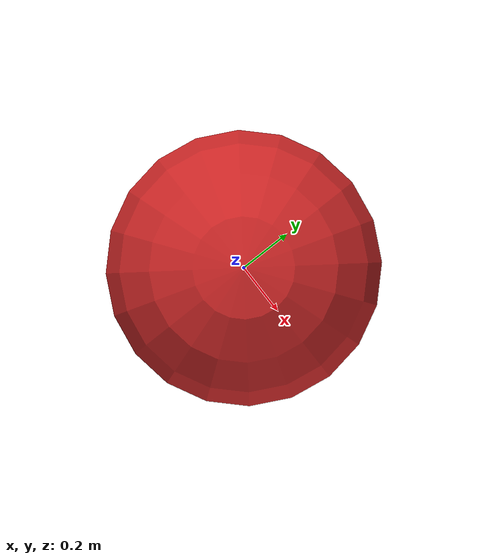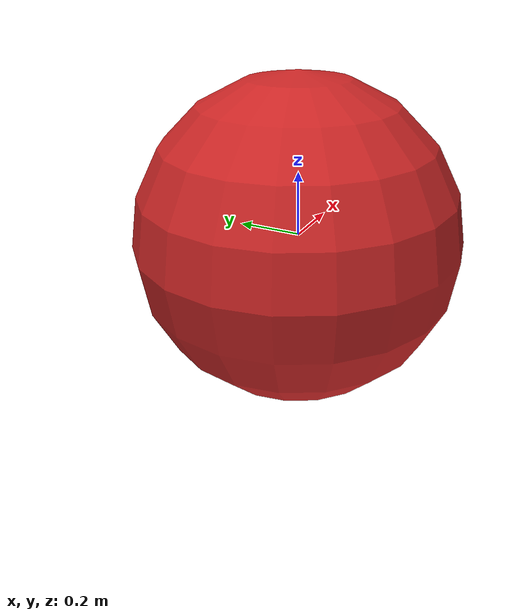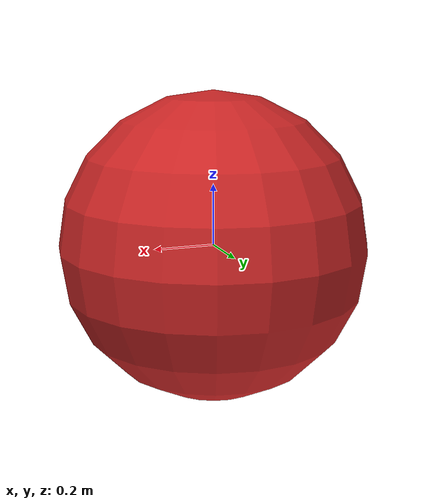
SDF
<?xml version='1.0'?>
<sdf version='1.7'>
  <model name='RedBall'>
    <link name='link_0'>
      <inertial>
        <mass>3979.35</mass>
        <inertia>
          <ixx>397.935</ixx>
          <ixy>0</ixy>
          <ixz>0</ixz>
          <iyy>397.935</iyy>
          <iyz>0</iyz>
          <izz>397.935</izz>
        </inertia>
        <pose>0 0 0 0 -0 0</pose>
      </inertial>
      <pose>0 0 0 0 -0 0</pose>
      <gravity>1</gravity>
      <self_collide>0</self_collide>
      <kinematic>0</kinematic>
      <enable_wind>0</enable_wind>
      <visual name='visual'>
        <pose>0 0 0 0 -0 0</pose>
        <geometry>
          <sphere>
            <radius>0.5</radius>
          </sphere>
        </geometry>
        <material>
          <lighting>1</lighting>
          <script>
            <uri>file://media/materials/scripts/gazebo.material</uri>
            <name>Gazebo/Red</name>
          </script>
          <shader type='pixel'>
            <normal_map>__default__</normal_map>
          </shader>
          <ambient>1 0 0 1</ambient>
          <diffuse>1 0 0 1</diffuse>
          <specular>0.1 0.1 0.1 1</specular>
          <emissive>0 0 0 1</emissive>
        </material>
        <transparency>0</transparency>
        <cast_shadows>1</cast_shadows>
      </visual>
      <visual name='ModelPreview_0::link_0::visual_1'>
        <pose>0 0 0 0 -0 0</pose>
        <geometry>
          <sphere>
            <radius>0.5</radius>
          </sphere>
        </geometry>
        <material>
          <lighting>1</lighting>
          <script>
            <uri>file://media/materials/scripts/gazebo.material</uri>
            <name>Gazebo/Red</name>
          </script>
          <shader type='pixel'>
            <normal_map>__default__</normal_map>
          </shader>
          <ambient>1 0 0 1</ambient>
          <diffuse>1 0 0 1</diffuse>
          <specular>0.1 0.1 0.1 1</specular>
          <emissive>0 0 0 1</emissive>
        </material>
        <transparency>0</transparency>
        <cast_shadows>1</cast_shadows>
      </visual>
      <collision name='collision'>
        <laser_retro>0</laser_retro>
        <max_contacts>0</max_contacts>
        <pose>0 0 0 0 -0 0</pose>
        <geometry>
          <sphere>
            <radius>0.75</radius>
          </sphere>
        </geometry>
        <surface>
          <friction>
            <ode>
              <mu>1</mu>
              <mu2>1</mu2>
              <fdir1>0 0 0</fdir1>
              <slip1>0</slip1>
              <slip2>0</slip2>
            </ode>
            <torsional>
              <coefficient>1</coefficient>
              <patch_radius>0</patch_radius>
              <surface_radius>0</surface_radius>
              <use_patch_radius>1</use_patch_radius>
              <ode>
                <slip>0</slip>
              </ode>
            </torsional>
          </friction>
          <bounce>
            <restitution_coefficient>0</restitution_coefficient>
            <threshold>1e+06</threshold>
          </bounce>
          <contact>
            <collide_without_contact>0</collide_without_contact>
            <collide_without_contact_bitmask>1</collide_without_contact_bitmask>
            <collide_bitmask>1</collide_bitmask>
            <ode>
              <soft_cfm>0</soft_cfm>
              <soft_erp>0.2</soft_erp>
              <kp>1e+13</kp>
              <kd>1</kd>
              <max_vel>0.01</max_vel>
              <min_depth>0</min_depth>
            </ode>
            <bullet>
              <split_impulse>1</split_impulse>
              <split_impulse_penetration_threshold>-0.01</split_impulse_penetration_threshold>
              <soft_cfm>0</soft_cfm>
              <soft_erp>0.2</soft_erp>
              <kp>1e+13</kp>
              <kd>1</kd>
            </bullet>
          </contact>
        </surface>
      </collision>
    </link>
    <plugin name="personplugin" filename="libpersonplugin.so"/>
    <static>0</static>
    <allow_auto_disable>1</allow_auto_disable>
  </model>
</sdf>
